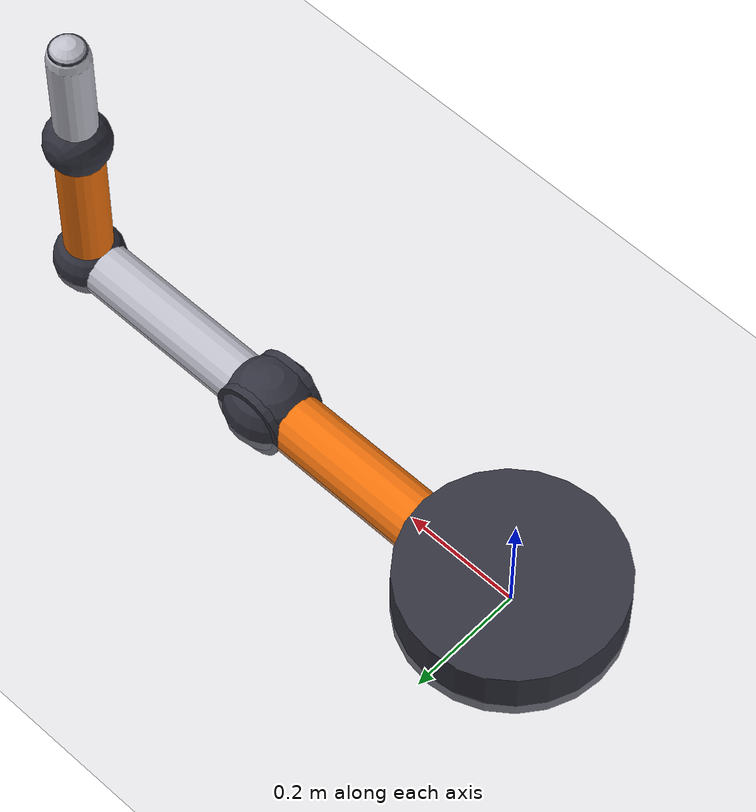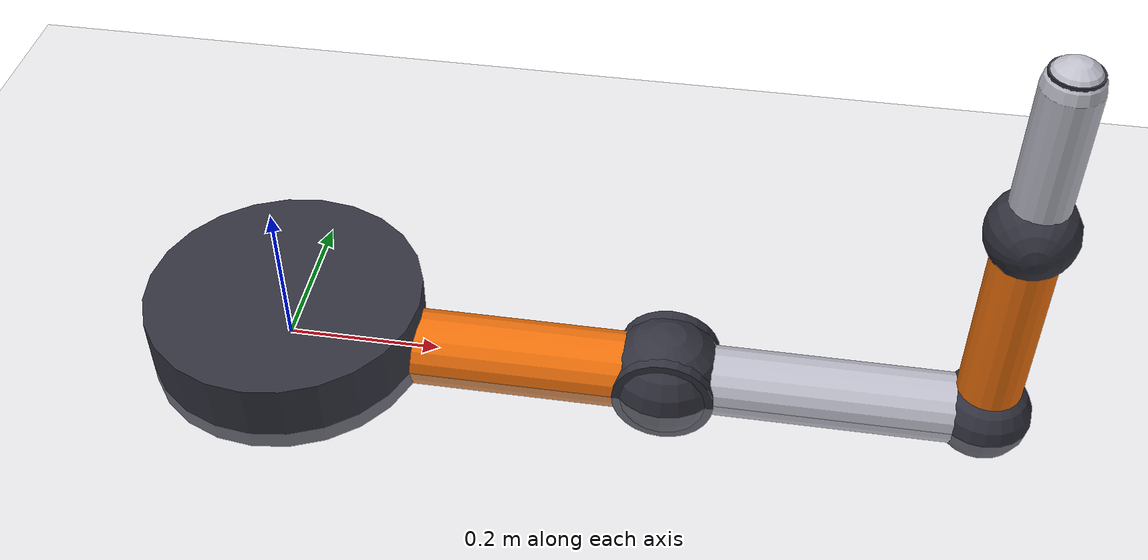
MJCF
<mujoco model="heal_6dof">
  <compiler angle="radian" coordinate="local"/>

  <visual>
    <headlight ambient="0.4 0.4 0.4" diffuse="0.8 0.8 0.8" specular="0.2 0.2 0.2"/>
    <global offwidth="1280" offheight="720"/>
  </visual>

  <asset>
    <texture type="skybox" builtin="gradient" rgb1="0.3 0.5 0.7" rgb2="0.1 0.15 0.2" width="512" height="512"/>
    <texture name="grid" type="2d" builtin="checker" width="512" height="512" rgb1="0.85 0.85 0.88" rgb2="0.65 0.65 0.7"/>
    <material name="grid_mat" texture="grid" texrepeat="5 5" reflectance="0.2"/>
    <material name="joint_mat" rgba="0.2 0.2 0.25 1" specular="0.4" shininess="0.6"/>
    <material name="heal_accent" rgba="0.95 0.45 0.05 1" specular="0.6" shininess="0.7"/>
    <material name="link_gray" rgba="0.75 0.75 0.8 1" specular="0.5" shininess="0.5"/>
    <material name="ee_mat" rgba="0.1 0.85 0.2 1" specular="0.8" shininess="1.0"/>
  </asset>

  <worldbody>
    <light diffuse="0.8 0.8 0.8" pos="1 1 4" dir="-0.3 -0.3 -1"/>
    <geom name="floor" type="plane" size="5 5 0.1" material="grid_mat"/>

    <!-- Base Pedestal -->
    <body name="base_link" pos="0 0 0">
      <geom name="base_geom" type="cylinder" size="0.18 0.05" pos="0 0 0.025" material="joint_mat"/>

      <!-- Link 1 (Joint 1: Base rotation around Z) -->
      <!-- DH 0: a=0.5, alpha=0, d=0 -->
      <body name="link1" pos="0 0 0">
        <joint name="joint1" type="hinge" axis="0 0 1"/>
        <geom name="j1_hub" type="cylinder" size="0.08 0.06" material="joint_mat"/>
        <geom name="l1_arm" type="capsule" fromto="0 0 0 0.5 0 0" size="0.05" material="heal_accent"/>

        <!-- Link 2 (Joint 2: Shoulder) -->
        <!-- DH 1: a=0, alpha=-pi/2, d=0 -->
        <body name="link2" pos="0.5 0 0" euler="0 0 0">
          <joint name="joint2" type="hinge" axis="0 0 1"/>
          <geom name="j2_hub" type="sphere" size="0.075" material="joint_mat"/>

          <!-- Link 3 (Joint 3: Elbow) -->
          <!-- DH 2: a=0.4, alpha=pi/2, d=0 -->
          <body name="link3" pos="0 0 0" euler="-1.5707963267948966 0 0">
            <joint name="joint3" type="hinge" axis="0 0 1"/>
            <geom name="j3_hub" type="cylinder" size="0.065 0.05" material="joint_mat"/>
            <geom name="l3_arm" type="capsule" fromto="0 0 0 0.4 0 0" size="0.045" material="link_gray"/>

            <!-- Link 4 (Joint 4: Wrist 1) -->
            <!-- DH 3: a=0, alpha=-pi/2, d=0.3 -->
            <body name="link4" pos="0.4 0 0" euler="1.5707963267948966 0 0">
              <joint name="joint4" type="hinge" axis="0 0 1"/>
              <geom name="j4_hub" type="sphere" size="0.06" material="joint_mat"/>
              <geom name="l4_arm" type="capsule" fromto="0 0 0 0 0 0.3" size="0.04" material="heal_accent"/>

              <!-- Link 5 (Joint 5: Wrist 2) -->
              <!-- DH 4: a=0, alpha=pi/2, d=0 -->
              <body name="link5" pos="0 0 0.3" euler="-1.5707963267948966 0 0">
                <joint name="joint5" type="hinge" axis="0 0 1"/>
                <geom name="j5_hub" type="sphere" size="0.055" material="joint_mat"/>

                <!-- Link 6 (Joint 6: Wrist 3 / Tool Flange) -->
                <!-- DH 5: a=0, alpha=0, d=0.2 -->
                <body name="link6" pos="0 0 0" euler="1.5707963267948966 0 0">
                  <joint name="joint6" type="hinge" axis="0 0 1"/>
                  <geom name="j6_hub" type="cylinder" size="0.045 0.03" material="joint_mat"/>
                  <geom name="l6_arm" type="capsule" fromto="0 0 0 0 0 0.2" size="0.035" material="link_gray"/>

                  <!-- End-Effector Body & Site -->
                  <body name="ee_body" pos="0 0 0.2" euler="0 0 0">
                    <geom name="ee_tool" type="cylinder" size="0.03 0.02" material="joint_mat"/>
                    <site name="end_effector" pos="0 0 0" size="0.03" material="ee_mat" type="sphere"/>
                  </body>
                </body>
              </body>
            </body>
          </body>
        </body>
      </body>
    </body>

    <!-- Fixed Cameras -->
    <camera name="workspace_view" pos="1.8 -1.5 1.5" xyaxes="0.65 0.76 0 -0.42 0.36 0.83"/>
    <camera name="top_down" pos="0.5 0.2 2.5" zaxis="0 0 1"/>
  </worldbody>
</mujoco>
